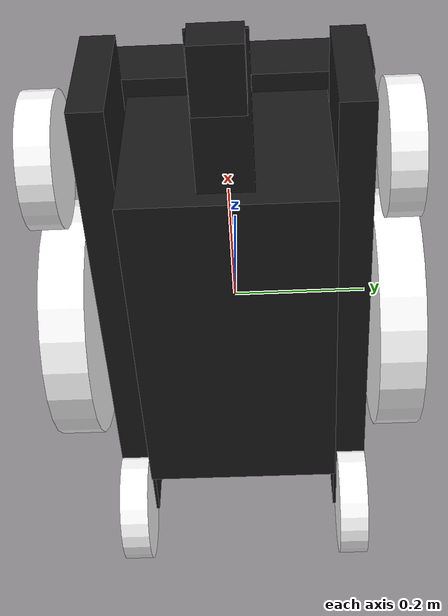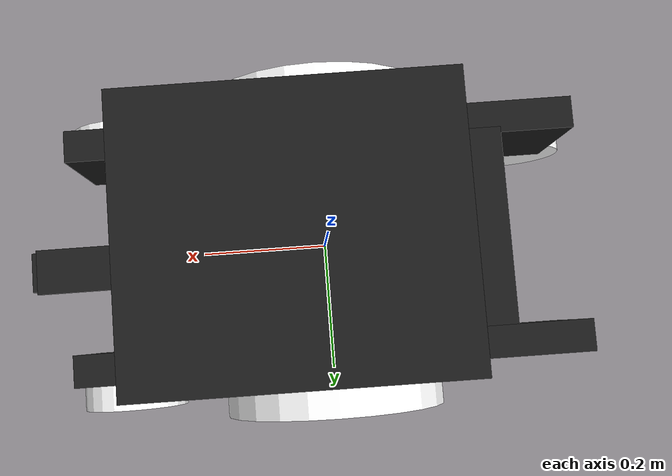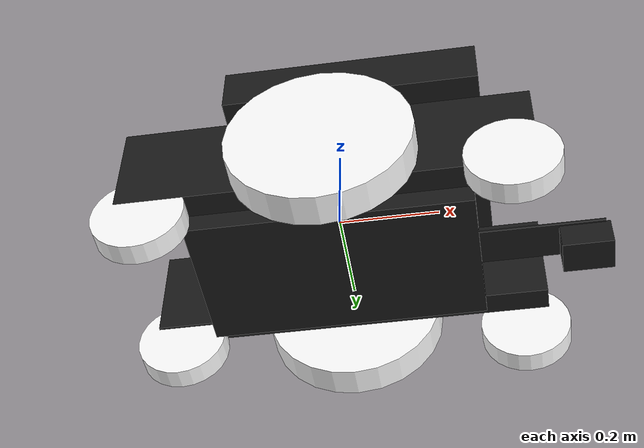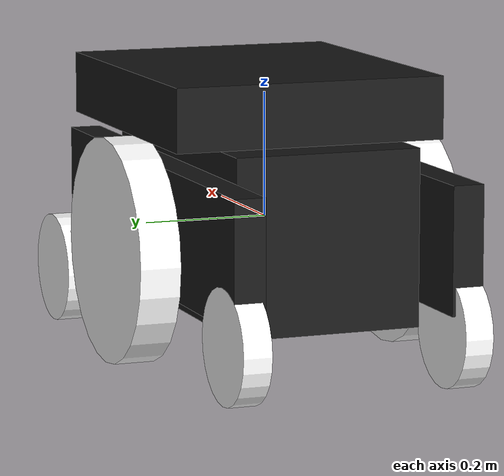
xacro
<?xml version="1.0"?>

<robot name="wheelchair" xmlns:xacro="http://www.ros.org/wiki/xacro" >

  <xacro:property name="robot_name" value="wheelchair" />

  <!-- wheelchairs total real world mass 154kg-->
  <!-- real mass distribution is unknown so small wheels are assumed to be 1 kg,
       large wheels 4 kg and the rest is in the wheelchair frame-->
  <xacro:property name="wheelchair_mass" value="142" />
  <xacro:property name="front_wheel_mass" value="1"/>
  <xacro:property name="back_wheel_mass" value="4"/>
  <!-- for inertial calculations only the wheels and mass of the body as a whole has been calculated -->
  <!-- the individual inertia for each component has been neglected-->

  <xacro:property name="wheelchair_base_width" value="0.3" />
  <xacro:property name="wheelchair_base_length" value="0.55" />

  <xacro:property name="small_wheel_radius" value="0.09" />
  <xacro:property name="large_wheel_radius" value="0.18" />
  <xacro:property name="small_wheel_thickness" value="0.045" />
  <xacro:property name="large_wheel_thickness" value="0.065" />

  <material name="gray">
    <color rgba="0.1 0.1 0.1 1"/>
  </material>
  <material name="black">
    <color rgba="0 0 0 1"/>
  </material>
  <material name="white">
    <color rgba="1 1 1 1"/>
  </material>

  <link name="base_link"></link>

  <link name="wheelchair_base">

    <visual name="visual">
			<geometry>
				<box size="${wheelchair_base_length} ${wheelchair_base_width} 0.28"/>
			</geometry>
      <material name="gray"/>
		</visual>

		<collision name="collision">
			<geometry>
				<box size="${wheelchair_base_length} ${wheelchair_base_width} 0.28"/>
			</geometry>
		</collision>

    <inertial>
			<mass value="${wheelchair_mass}"/>
          <!-- centre of inertai is moved down to be near the centr of mass, which is near the batteries and motors -->
      		<origin xyz="0 0 0" rpy=" 0 0 0"/>

          <!-- inertia is calculated using the height of both base and seat and the depth and width of the seat-->
          <inertia ixx="4.78658" ixy="0.0" ixz="0.0" iyy="3.99967" iyz="0.0" izz="5.36878"/>
		</inertial>

	</link>

  <joint name="wheelchair_base_joint" type="fixed">
    <parent link="base_link"/>
    <child link="wheelchair_base"/>
    <origin rpy="0 0 0" xyz="0 0 0"/>
  </joint>

  <link name="lidar_mount">

    <visual name="visual">
			<geometry>
				<box size="0.35 0.08 0.005"/>
			</geometry>
      <material name="gray"/>
		</visual>

		<collision name="collision">
			<geometry>
				<box size="0.35 0.08 0.005"/>
			</geometry>
		</collision>

	</link>

  <joint name="lidar_mount_joint" type="fixed">
    <parent link="wheelchair_base"/>
    <child link="lidar_mount"/>
    <origin rpy="0 0 0" xyz="0.34 0 -0.11"/>
  </joint>

  <link name="lidar">

    <visual name="visual">
			<geometry>
				<box size="0.097 0.07 0.055"/>
			</geometry>
      <material name="gray"/>
		</visual>

		<collision name="collision">
			<geometry>
				<box size="0.097 0.07 0.055"/>
			</geometry>
		</collision>

	</link>

  <joint name="lidar_joint" type="fixed">
    <parent link="lidar_mount"/>
    <child link="lidar"/>
    <origin rpy="0 0 0" xyz="0.135 0 -0.0275"/>
  </joint>

  <gazebo reference="lidar">

    <sensor name="lidar_A1" type="ray">
      <visualize>true</visualize>
      <update_rate>5</update_rate>
      <ray>
        <scan>
          <horizontal>
            <samples>2000</samples>
            <resolution>1</resolution>
            <min_angle>-3.14</min_angle>
            <max_angle>3.14</max_angle>
          </horizontal>
        </scan>

        <range>
          <min>0.5</min>
          <max>12.0</max>
          <resolution>1</resolution>
        </range>
      </ray>

      <plugin name="lidar_ray_controller" filename="libgazebo_ros_laser.so">
        <frame_name>lidar</frame_name>
        <topicName>/scan</topicName>
      </plugin>
    </sensor>

  </gazebo>

  <link name="chair_seat">

    <visual name="visual">
			<geometry>
				<box size="0.51 0.44 0.10"/>
			</geometry>
      <material name="gray"/>
		</visual>

		<collision name="collision">
			<geometry>
				<box size="0.51 0.44 0.10"/>
			</geometry>
		</collision>

	</link>

  <joint name="chair_seat_joint" type="fixed">
    <parent link="wheelchair_base"/>
    <child link="chair_seat"/>
    <origin rpy="0 0 0" xyz="0.05 0 0.19"/>
  </joint>

  <link name="right_base_block">

    <visual name="visual">
			<geometry>
				<box size="0.8 0.05 0.20"/>
			</geometry>
      <material name="gray"/>
		</visual>

		<collision name="collision">
			<geometry>
				<box size="0.8 0.05 0.20"/>
			</geometry>
		</collision>

	</link>

  <joint name="right_base_block_joint" type="fixed">
    <parent link="wheelchair_base"/>
    <child link="right_base_block"/>
    <origin rpy="0 0 0" xyz="0 0.175 0.0"/>
  </joint>

  <link name="left_base_block">

    <visual name="visual">
			<geometry>
				<box size="0.8 0.05 0.20"/>
			</geometry>
      <material name="gray"/>
		</visual>

		<collision name="collision">
			<geometry>
				<box size="0.8 0.05 0.20"/>
			</geometry>
		</collision>

	</link>

  <joint name="left_base_block_joint" type="fixed">
    <parent link="wheelchair_base"/>
    <child link="left_base_block"/>
    <origin rpy="0 0 0" xyz="0 -0.175 0.0"/>
  </joint>

  <link name="right_front_wheel">

    <visual>
      <origin rpy="1.57075 0 0" xyz="0 0 0"/>
      <geometry>
        <cylinder length="${small_wheel_thickness}" radius="${small_wheel_radius}"/>
      </geometry>
      <material name="white"/>
    </visual>

    <collision>
      <origin rpy="1.57075 0 0" xyz="0 0 0"/>
      <geometry>
        <cylinder length="${small_wheel_thickness}" radius="${small_wheel_radius}"/>
      </geometry>
    </collision>

    <inertial>
      <mass value="1"/>
      <inertia ixx="0.00223" ixy="0.0" ixz="0.0" iyy="0.00223" iyz="0.0" izz="0.00125"/>
    </inertial>

  </link>

  <joint name="right_front_wheel_joint" type="continuous">
    <axis rpy="0 0 0" xyz="0 1 0"/>
    <parent link="wheelchair_base"/>
    <child link="right_front_wheel"/>
    <origin rpy="0 0 0" xyz="0.35 -0.2275 -0.13"/>
  </joint>

  <link name="right_large_wheel">

    <visual>
      <origin rpy="1.57075 0 0" xyz="0 0 0"/>
      <geometry>
        <cylinder length="${large_wheel_thickness}" radius="${large_wheel_radius}"/>
      </geometry>
      <material name="white"/>
    </visual>

    <collision>
      <origin rpy="1.57075 0 0" xyz="0 0 0"/>
      <geometry>
        <cylinder length="${large_wheel_thickness}" radius="${large_wheel_radius}"/>
      </geometry>
    </collision>

    <inertial>
      <mass value="1"/>
      <inertia ixx="1.0" ixy="0.0" ixz="0.0" iyy="1.0" iyz="0.0" izz="1.0"/>
    </inertial>

  </link>

  <joint name="right_large_wheel_joint" type="continuous">
    <axis rpy="0 0 0" xyz="0 1 0"/>
    <parent link="wheelchair_base"/>
    <child link="right_large_wheel"/>
    <origin rpy="0 0 0" xyz="0 -0.2375 -0.04"/>
  </joint>

  <link name="right_back_wheel">

    <visual>
      <origin rpy="1.57075 0 0" xyz="0 0 0"/>
      <geometry>
        <cylinder length="${small_wheel_thickness}" radius="${small_wheel_radius}"/>
      </geometry>
      <material name="white"/>
    </visual>

    <collision>
      <origin rpy="1.57075 0 0" xyz="0 0 0"/>
      <geometry>
        <cylinder length="${small_wheel_thickness}" radius="${small_wheel_radius}"/>
      </geometry>
    </collision>

    <inertial>
      <mass value="1"/>
      <inertia ixx="0.0338" ixy="0.0" ixz="0.0" iyy="0.0338" iyz="0.0" izz="0.0108"/>
    </inertial>

  </link>

  <joint name="right_back_wheel_joint" type="continuous">
    <axis rpy="0 0 0" xyz="0 1 0"/>
    <parent link="wheelchair_base"/>
    <child link="right_back_wheel"/>
    <origin rpy="0 0 0" xyz="-0.35 -0.1775 -0.13"/>
  </joint>

  <link name="left_front_wheel">

    <visual>
      <origin rpy="1.57075 0 0" xyz="0 0 0"/>
      <geometry>
        <cylinder length="${small_wheel_thickness}" radius="${small_wheel_radius}"/>
      </geometry>
      <material name="white"/>
    </visual>

    <collision>
      <origin rpy="1.57075 0 0" xyz="0 0 0"/>
      <geometry>
        <cylinder length="${small_wheel_thickness}" radius="${small_wheel_radius}"/>
      </geometry>
    </collision>

    <inertial>
      <mass value="1"/>
      <inertia ixx="1.0" ixy="0.0" ixz="0.0" iyy="1.0" iyz="0.0" izz="1.0"/>
    </inertial>

  </link>

  <joint name="left_front_wheel_joint" type="continuous">
    <axis rpy="0 0 0" xyz="0 1 0"/>
    <parent link="wheelchair_base"/>
    <child link="left_front_wheel"/>
    <origin rpy="0 0 0" xyz="0.35 0.2275 -0.13"/>
  </joint>

  <link name="left_large_wheel">

    <visual>
      <origin rpy="1.57075 0 0" xyz="0 0 0"/>
      <geometry>
        <cylinder length="${large_wheel_thickness}" radius="${large_wheel_radius}"/>
      </geometry>
      <material name="white"/>
    </visual>

    <collision>
      <origin rpy="1.57075 0 0" xyz="0 0 0"/>
      <geometry>
        <cylinder length="${large_wheel_thickness}" radius="${large_wheel_radius}"/>
      </geometry>
    </collision>

    <inertial>
      <mass value="1"/>
      <inertia ixx="0.00223" ixy="0.0" ixz="0.0" iyy="0.00223" iyz="0.0" izz="0.00125"/>
    </inertial>
  </link>

  <joint name="left_large_wheel_joint" type="continuous">
    <axis rpy="0 0 0" xyz="0 1 0"/>
    <parent link="wheelchair_base"/>
    <child link="left_large_wheel"/>
    <origin rpy="0 0 0" xyz="0 0.2375 -0.04"/>
  </joint>

  <link name="left_back_wheel">

    <visual>
      <origin rpy="1.57075 0 0" xyz="0 0 0"/>
      <geometry>
        <cylinder length="${small_wheel_thickness}" radius="${small_wheel_radius}"/>
      </geometry>
      <material name="white"/>
    </visual>

    <collision>
      <origin rpy="1.57075 0 0" xyz="0 0 0"/>
      <geometry>
        <cylinder length="${small_wheel_thickness}" radius="${small_wheel_radius}"/>
      </geometry>
    </collision>

    <inertial>
      <mass value="1"/>
      <inertia ixx="0.0338" ixy="0.0" ixz="0.0" iyy="0.0338" iyz="0.0" izz="0.0108"/>
    </inertial>

  </link>

  <joint name="left_back_wheel_joint" type="continuous">
    <axis rpy="0 0 0" xyz="0 1 0"/>
    <parent link="wheelchair_base"/>
    <child link="left_back_wheel"/>
    <origin rpy="0 0 0" xyz="-0.35 0.1775 -0.13"/>
  </joint>

  <!-- wheelchair caster wheels are set to have low friction -->
  <gazebo reference="right_front_wheel">
		<mu1>0.001</mu1>
		<mu2>0.001</mu2>
	</gazebo>

  <gazebo reference="left_front_wheel">
		<mu1>0.001</mu1>
		<mu2>0.001</mu2>
	</gazebo>

  <gazebo reference="right_back_wheel">
		<mu1>0.001</mu1>
		<mu2>0.001</mu2>
	</gazebo>

  <gazebo reference="left_back_wheel">
		<mu1>0.001</mu1>
		<mu2>0.001</mu2>
	</gazebo>

  <!-- physics values for large wheels are based of values used in code examples from https://wiki.ros.org/urdf/Tutorials/Using%20a%20URDF%20in%20Gazebo -->
  <!-- max velocity is set as the radians per second needed to travel at 6 kmh with wheels of radius 16 cm-->
  <gazebo reference="right_large_wheel">
    <mu1 value="1.0"/>
    <mu2 value="0.25"/>
    <kp value="10000000.0" />
    <kd value="1.0" />
		<maxVel value = "9.26"/>
	</gazebo>

  <gazebo reference="left_large_wheel">
    <mu1 value="1.0"/>
    <mu2 value="025"/>
    <kp value="10000000.0" />
    <kd value="1.0" />
		<maxVel value = "9.26"/>
	</gazebo>

  <!-- differential drive gazebo controller-->
  <gazebo>

    <plugin name="differential_drive_controller" filename="libgazebo_ros_diff_drive.so">
      <updateRate>10.0</updateRate>
      <robotNamespace>/</robotNamespace>
      <robotBaseFrame>base_link</robotBaseFrame>
      <leftJoint>right_large_wheel_joint</leftJoint>
      <rightJoint>left_large_wheel_joint</rightJoint>
      <wheelSeparation>0.475</wheelSeparation>
      <wheelDiameter>0.36</wheelDiameter>

      <topicName>/cmd_vel_out</topicName>
      <commandTopic>/cmd_vel_out</commandTopic>
      <topic_name_twist>/cmd_vel_out</topic_name_twist>

      <odometryTopic>odom</odometryTopic>
      <odometryFrame>odom</odometryFrame>
      <topic_name_odometry>odom</topic_name_odometry>

      <!--Default values-->
      <publishTF>10</publishTF>
      <publishWheelTF>False</publishWheelTF>
      <publishWheelJointState>False</publishWheelJointState>
      <publishOdomTF>True</publishOdomTF>

    </plugin>

  </gazebo>

</robot>
